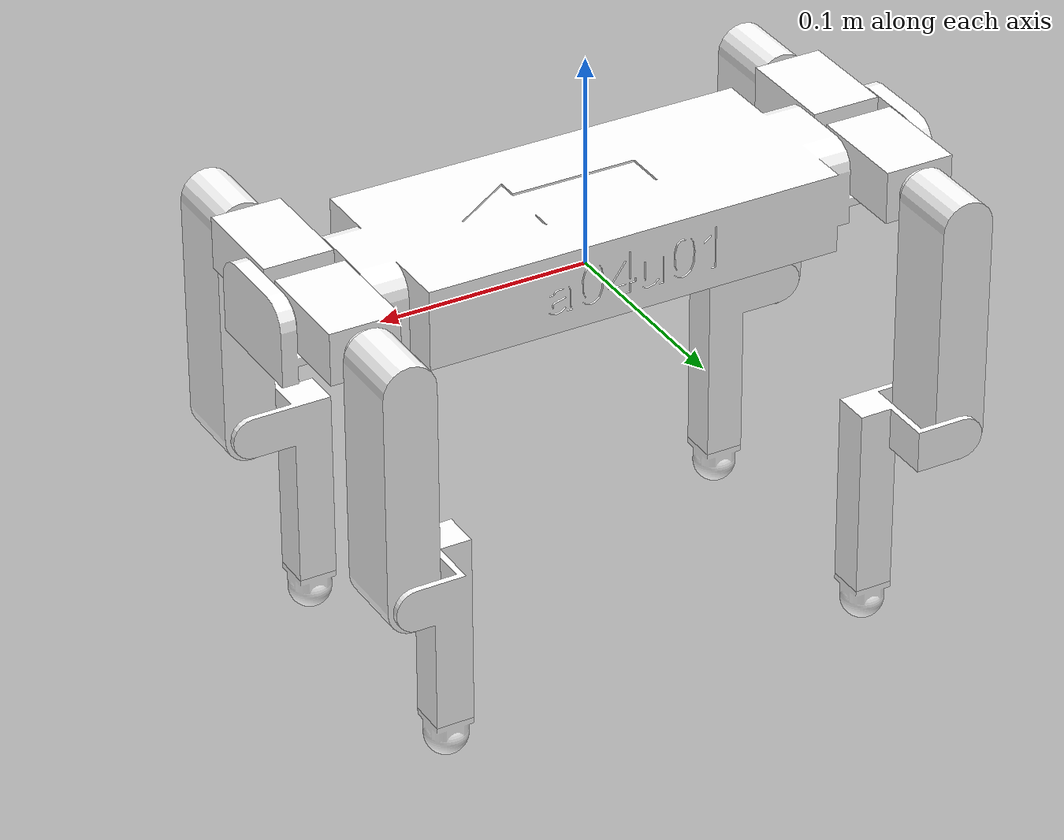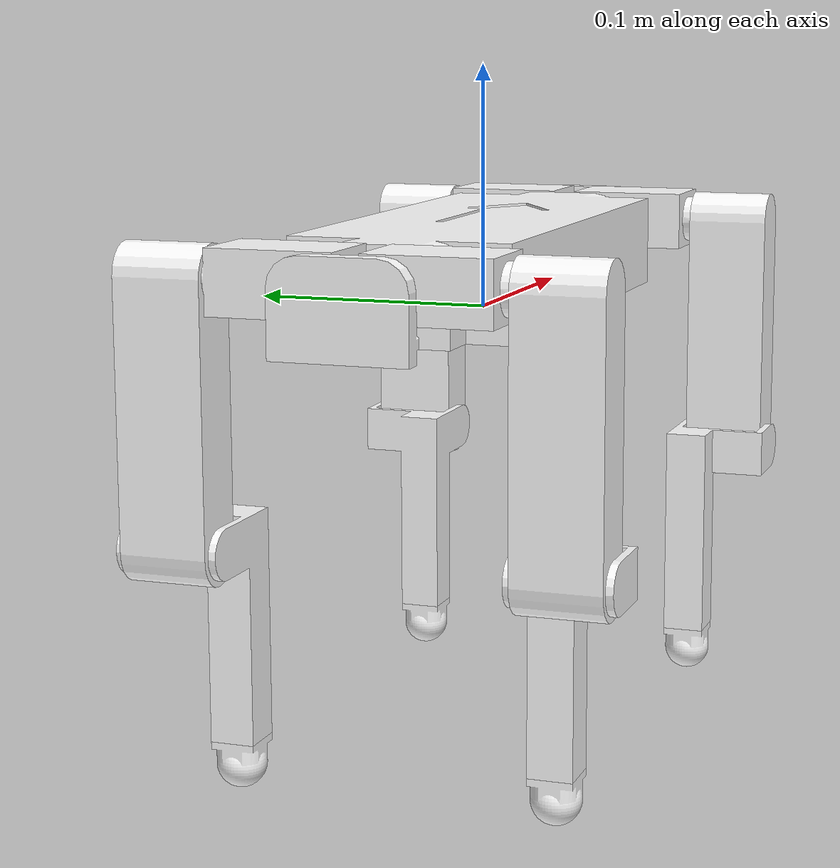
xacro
<robot name="dog12a04u03_description">

  <link name="base">
    <inertial>
      <origin xyz="-3.1736E-05 -2.9783E-05 0.018563" rpy="0 0 0" />
      <mass value="0.81565" />
      <inertia ixx="0.00059343" ixy="6.3209E-08" ixz="4.5229E-07" iyy="0.0043539" iyz="-2.8021E-09" izz="0.0047495" />
    </inertial>
    <visual>
      <origin xyz="0 0 0" rpy="0 0 0" />
      <geometry>
        <mesh filename="package://dog12a04u03_description/meshes/visual/base.STL" />
      </geometry>
      <material name="">
        <color rgba="1 1 1 1" />
      </material>
    </visual>
    <collision>
      <origin xyz="0 0 0" rpy="0 0 0" />
      <geometry>
        <mesh filename="package://dog12a04u03_description/meshes/collision/base.STL" />
      </geometry>
    </collision>
  </link>
  <link name="LF_HIP">
    <inertial>
      <origin xyz="-0.0175 0.015568 -1.7347E-18" rpy="0 0 0" />
      <mass value="0.043998" />
      <inertia ixx="1.2087E-05" ixy="-1.786E-20" ixz="-4.1325E-24" iyy="6.2751E-06" iyz="-7.9099E-23" izz="1.3883E-05" />
    </inertial>
    <visual>
      <origin xyz="0 0 0" rpy="0 0 0" />
      <geometry>
        <mesh filename="package://dog12a04u03_description/meshes/visual/LF_HIP.STL" />
      </geometry>
      <material name="">
        <color rgba="1 1 1 1" />
      </material>
    </visual>
    <collision>
      <origin xyz="0 0 0" rpy="0 0 0" />
      <geometry>
        <mesh filename="package://dog12a04u03_description/meshes/collision/LF_HIP.STL" />
      </geometry>
    </collision>
  </link>
  <joint name="LF_HAA" type="revolute">
    <origin xyz="0.1525 0.015 0.026" rpy="0 0 0" />
    <parent link="base" />
    <child link="LF_HIP" />
    <axis xyz="1 0 0" />
    <limit lower="-1.57" upper="1.57" effort="0" velocity="0" />
  </joint>
  <link name="LF_THIGH">
    <inertial>
      <origin xyz="0 -0.0175 -0.0525" rpy="0 0 0" />
      <mass value="0.11124" />
      <inertia ixx="0.0001562" ixy="4.903E-22" ixz="8.4372E-22" iyy="0.00015041" iyz="9.2995E-21" izz="1.6921E-05" />
    </inertial>
    <visual>
      <origin xyz="0 0 0" rpy="0 0 0" />
      <geometry>
        <mesh filename="package://dog12a04u03_description/meshes/visual/LF_THIGH.STL" />
      </geometry>
      <material name="">
        <color rgba="1 1 1 1" />
      </material>
    </visual>
    <collision>
      <origin xyz="0 0 0" rpy="0 0 0" />
      <geometry>
        <mesh filename="package://dog12a04u03_description/meshes/collision/LF_THIGH.STL" />
      </geometry>
    </collision>
  </link>
  <joint name="LF_HFE" type="revolute">
    <origin xyz="-0.0175 0.079 0" rpy="0 0 0" />
    <parent link="LF_HIP" />
    <child link="LF_THIGH" />
    <axis xyz="0 -1 0" />
    <limit lower="-1.57" upper="1.57" effort="0" velocity="0" />
  </joint>
  <link name="LF_SHANK">
    <inertial>
      <origin xyz="-0.026472 -0.030068 -0.031077" rpy="0 0 0" />
      <mass value="0.035221" />
      <inertia ixx="3.0014E-05" ixy="-9.4679E-07" ixz="-2.7667E-06" iyy="2.9697E-05" iyz="-2.1152E-06" izz="5.7378E-06" />
    </inertial>
    <visual>
      <origin xyz="0 0 0" rpy="0 0 0" />
      <geometry>
        <mesh filename="package://dog12a04u03_description/meshes/visual/LF_SHANK.STL" />
      </geometry>
      <material name="">
        <color rgba="1 1 1 1" />
      </material>
    </visual>
    <collision>
      <origin xyz="0 0 0" rpy="0 0 0" />
      <geometry>
        <mesh filename="package://dog12a04u03_description/meshes/collision/LF_SHANK.STL" />
      </geometry>
    </collision>
  </link>
  <joint name="LF_KFE" type="revolute">
    <origin xyz="0 0.003 -0.105" rpy="0 0 0" />
    <parent link="LF_THIGH" />
    <child link="LF_SHANK" />
    <axis xyz="0 -1 0" />
    <limit lower="-1.57" upper="1.57" effort="0" velocity="0" />
  </joint>
  <link name="LF_FOOT">
    <inertial>
      <origin xyz="0 0 -0.0085266" rpy="0 0 0" />
      <mass value="0.0052561" />
      <inertia ixx="2.5787E-07" ixy="1.5501E-22" ixz="1.9666E-22" iyy="2.5787E-07" iyz="-2.6506E-23" izz="2.4038E-07" />
    </inertial>
    <visual>
      <origin xyz="0 0 0" rpy="0 0 0" />
      <geometry>
        <mesh filename="package://dog12a04u03_description/meshes/visual/LF_FOOT.STL" />
      </geometry>
      <material name="">
        <color rgba="1 1 1 1" />
      </material>
    </visual>
    <collision>
      <origin xyz="0 0 0" rpy="0 0 0" />
      <geometry>
        <mesh filename="package://dog12a04u03_description/meshes/collision/LF_FOOT.STL" />
      </geometry>
    </collision>
  </link>
  <joint name="LF_FOOT_fixed" type="fixed">
    <origin xyz="-0.029 -0.032 -0.082" rpy="0 0 0" />
    <parent link="LF_SHANK" />
    <child link="LF_FOOT" />
    <axis xyz="0 0 0" />
    <limit lower="0" upper="0" effort="0" velocity="0" />
  </joint>
  <link name="RF_HIP">
    <inertial>
      <origin xyz="-0.0175 -0.015568 -3.4694E-18" rpy="0 0 0" />
      <mass value="0.043998" />
      <inertia ixx="1.2087E-05" ixy="4.9519E-21" ixz="-2.9013E-22" iyy="6.2751E-06" iyz="9.6455E-22" izz="1.3883E-05" />
    </inertial>
    <visual>
      <origin xyz="0 0 0" rpy="0 0 0" />
      <geometry>
        <mesh filename="package://dog12a04u03_description/meshes/visual/RF_HIP.STL" />
      </geometry>
      <material name="">
        <color rgba="1 1 1 1" />
      </material>
    </visual>
    <collision>
      <origin xyz="0 0 0" rpy="0 0 0" />
      <geometry>
        <mesh filename="package://dog12a04u03_description/meshes/collision/RF_HIP.STL" />
      </geometry>
    </collision>
  </link>
  <joint name="RF_HAA" type="revolute">
    <origin xyz="0.1525 -0.015 0.026" rpy="0 0 0" />
    <parent link="base" />
    <child link="RF_HIP" />
    <axis xyz="-1 0 0" />
    <limit lower="-1.57" upper="1.57" effort="0" velocity="0" />
  </joint>
  <link name="RF_THIGH">
    <inertial>
      <origin xyz="0 0.0175 -0.0525" rpy="0 0 0" />
      <mass value="0.11124" />
      <inertia ixx="0.0001562" ixy="9.7027E-21" ixz="-1.6874E-21" iyy="0.00015041" iyz="-2.13E-21" izz="1.6921E-05" />
    </inertial>
    <visual>
      <origin xyz="0 0 0" rpy="0 0 0" />
      <geometry>
        <mesh filename="package://dog12a04u03_description/meshes/visual/RF_THIGH.STL" />
      </geometry>
      <material name="">
        <color rgba="1 1 1 1" />
      </material>
    </visual>
    <collision>
      <origin xyz="0 0 0" rpy="0 0 0" />
      <geometry>
        <mesh filename="package://dog12a04u03_description/meshes/collision/RF_THIGH.STL" />
      </geometry>
    </collision>
  </link>
  <joint name="RF_HFE" type="revolute">
    <origin xyz="-0.0175 -0.079 0" rpy="0 0 0" />
    <parent link="RF_HIP" />
    <child link="RF_THIGH" />
    <axis xyz="0 -1 0" />
    <limit lower="-1.57" upper="1.57" effort="0" velocity="0" />
  </joint>
  <link name="RF_SHANK">
    <inertial>
      <origin xyz="-0.026472 0.030068 -0.031077" rpy="0 0 0" />
      <mass value="0.035221" />
      <inertia ixx="3.0014E-05" ixy="9.4679E-07" ixz="-2.7667E-06" iyy="2.9697E-05" iyz="2.1152E-06" izz="5.7378E-06" />
    </inertial>
    <visual>
      <origin xyz="0 0 0" rpy="0 0 0" />
      <geometry>
        <mesh filename="package://dog12a04u03_description/meshes/visual/RF_SHANK.STL" />
      </geometry>
      <material name="">
        <color rgba="1 1 1 1" />
      </material>
    </visual>
    <collision>
      <origin xyz="0 0 0" rpy="0 0 0" />
      <geometry>
        <mesh filename="package://dog12a04u03_description/meshes/collision/RF_SHANK.STL" />
      </geometry>
    </collision>
  </link>
  <joint name="RF_KFE" type="revolute">
    <origin xyz="0 -0.003 -0.105" rpy="0 0 0" />
    <parent link="RF_THIGH" />
    <child link="RF_SHANK" />
    <axis xyz="0 -1 0" />
    <limit lower="-1.57" upper="1.57" effort="0" velocity="0" />
  </joint>
  <link name="RF_FOOT">
    <inertial>
      <origin xyz="0 0 -0.0085266" rpy="0 0 0" />
      <mass value="0.0052561" />
      <inertia ixx="2.5787E-07" ixy="1.4349E-22" ixz="6.3879E-23" iyy="2.5787E-07" iyz="-4.5408E-23" izz="2.4038E-07" />
    </inertial>
    <visual>
      <origin xyz="0 0 0" rpy="0 0 0" />
      <geometry>
        <mesh filename="package://dog12a04u03_description/meshes/visual/RF_FOOT.STL" />
      </geometry>
      <material name="">
        <color rgba="1 1 1 1" />
      </material>
    </visual>
    <collision>
      <origin xyz="0 0 0" rpy="0 0 0" />
      <geometry>
        <mesh filename="package://dog12a04u03_description/meshes/collision/RF_FOOT.STL" />
      </geometry>
    </collision>
  </link>
  <joint name="RF_FOOT_fixed" type="fixed">
    <origin xyz="-0.029 0.032 -0.082" rpy="0 0 0" />
    <parent link="RF_SHANK" />
    <child link="RF_FOOT" />
    <axis xyz="0 0 0" />
    <limit lower="0" upper="0" effort="0" velocity="0" />
  </joint>
  <link name="LH_HIP">
    <inertial>
      <origin xyz="0.0175 0.015568 -1.7347E-18" rpy="0 0 0" />
      <mass value="0.043998" />
      <inertia ixx="1.2087E-05" ixy="1.119E-21" ixz="-1.5187E-23" iyy="6.2751E-06" iyz="-8.9553E-23" izz="1.3883E-05" />
    </inertial>
    <visual>
      <origin xyz="0 0 0" rpy="0 0 0" />
      <geometry>
        <mesh filename="package://dog12a04u03_description/meshes/visual/LH_HIP.STL" />
      </geometry>
      <material name="">
        <color rgba="1 1 1 1" />
      </material>
    </visual>
    <collision>
      <origin xyz="0 0 0" rpy="0 0 0" />
      <geometry>
        <mesh filename="package://dog12a04u03_description/meshes/collision/LH_HIP.STL" />
      </geometry>
    </collision>
  </link>
  <joint name="LH_HAA" type="revolute">
    <origin xyz="-0.1525 0.015 0.026" rpy="0 0 0" />
    <parent link="base" />
    <child link="LH_HIP" />
    <axis xyz="1 0 0" />
    <limit lower="-1.57" upper="1.57" effort="0" velocity="0" />
  </joint>
  <link name="LH_THIGH">
    <inertial>
      <origin xyz="-6.9389E-18 -0.0175 -0.0525" rpy="0 0 0" />
      <mass value="0.11124" />
      <inertia ixx="0.0001562" ixy="-5.6606E-21" ixz="3.7124E-20" iyy="0.00015041" iyz="-2.357E-20" izz="1.6921E-05" />
    </inertial>
    <visual>
      <origin xyz="0 0 0" rpy="0 0 0" />
      <geometry>
        <mesh filename="package://dog12a04u03_description/meshes/visual/LH_THIGH.STL" />
      </geometry>
      <material name="">
        <color rgba="1 1 1 1" />
      </material>
    </visual>
    <collision>
      <origin xyz="0 0 0" rpy="0 0 0" />
      <geometry>
        <mesh filename="package://dog12a04u03_description/meshes/collision/LH_THIGH.STL" />
      </geometry>
    </collision>
  </link>
  <joint name="LH_HFE" type="revolute">
    <origin xyz="0.0175 0.079 0" rpy="0 0 0" />
    <parent link="LH_HIP" />
    <child link="LH_THIGH" />
    <axis xyz="0 -1 0" />
    <limit lower="-1.57" upper="1.57" effort="0" velocity="0" />
  </joint>
  <link name="LH_SHANK">
    <inertial>
      <origin xyz="0.026472 0.010932 -0.031077" rpy="0 0 0" />
      <mass value="0.035221" />
      <inertia ixx="3.0014E-05" ixy="9.4679E-07" ixz="2.7667E-06" iyy="2.9697E-05" iyz="-2.1152E-06" izz="5.7378E-06" />
    </inertial>
    <visual>
      <origin xyz="0 0 0" rpy="0 0 0" />
      <geometry>
        <mesh filename="package://dog12a04u03_description/meshes/visual/LH_SHANK.STL" />
      </geometry>
      <material name="">
        <color rgba="1 1 1 1" />
      </material>
    </visual>
    <collision>
      <origin xyz="0 0 0" rpy="0 0 0" />
      <geometry>
        <mesh filename="package://dog12a04u03_description/meshes/collision/LH_SHANK.STL" />
      </geometry>
    </collision>
  </link>
  <joint name="LH_KFE" type="revolute">
    <origin xyz="0 -0.038 -0.105" rpy="0 0 0" />
    <parent link="LH_THIGH" />
    <child link="LH_SHANK" />
    <axis xyz="0 1 0" />
    <limit lower="-1.57" upper="1.57" effort="0" velocity="0" />
  </joint>
  <link name="LH_FOOT">
    <inertial>
      <origin xyz="6.9389E-18 -1.3878E-17 -0.0085266" rpy="0 0 0" />
      <mass value="0.0052561" />
      <inertia ixx="2.5787E-07" ixy="-7.8288E-23" ixz="1.1979E-22" iyy="2.5787E-07" iyz="6.7417E-24" izz="2.4038E-07" />
    </inertial>
    <visual>
      <origin xyz="0 0 0" rpy="0 0 0" />
      <geometry>
        <mesh filename="package://dog12a04u03_description/meshes/visual/LH_FOOT.STL" />
      </geometry>
      <material name="">
        <color rgba="1 1 1 1" />
      </material>
    </visual>
    <collision>
      <origin xyz="0 0 0" rpy="0 0 0" />
      <geometry>
        <mesh filename="package://dog12a04u03_description/meshes/collision/LH_FOOT.STL" />
      </geometry>
    </collision>
  </link>
  <joint name="LH_FOOT_fixed" type="fixed">
    <origin xyz="0.029 0.009 -0.082" rpy="0 0 0" />
    <parent link="LH_SHANK" />
    <child link="LH_FOOT" />
    <axis xyz="0 0 0" />
    <limit lower="0" upper="0" effort="0" velocity="0" />
  </joint>
  <link name="RH_HIP">
    <inertial>
      <origin xyz="0.0175 -0.015568 1.7347E-18" rpy="0 0 0" />
      <mass value="0.043998" />
      <inertia ixx="1.2087E-05" ixy="2.2832E-20" ixz="-8.6558E-23" iyy="6.2751E-06" iyz="1.9815E-22" izz="1.3883E-05" />
    </inertial>
    <visual>
      <origin xyz="0 0 0" rpy="0 0 0" />
      <geometry>
        <mesh filename="package://dog12a04u03_description/meshes/visual/RH_HIP.STL" />
      </geometry>
      <material name="">
        <color rgba="1 1 1 1" />
      </material>
    </visual>
    <collision>
      <origin xyz="0 0 0" rpy="0 0 0" />
      <geometry>
        <mesh filename="package://dog12a04u03_description/meshes/collision/RH_HIP.STL" />
      </geometry>
    </collision>
  </link>
  <joint name="RH_HAA" type="revolute">
    <origin xyz="-0.1525 -0.015 0.026" rpy="0 0 0" />
    <parent link="base" />
    <child link="RH_HIP" />
    <axis xyz="-1 0 0" />
    <limit lower="-1.57" upper="1.57" effort="0" velocity="0" />
  </joint>
  <link name="RH_THIGH">
    <inertial>
      <origin xyz="-8.6736E-18 0.0175 -0.0525" rpy="0 0 0" />
      <mass value="0.11124" />
      <inertia ixx="0.0001562" ixy="-1.5383E-22" ixz="-4.2186E-22" iyy="0.00015041" iyz="1.7065E-20" izz="1.6921E-05" />
    </inertial>
    <visual>
      <origin xyz="0 0 0" rpy="0 0 0" />
      <geometry>
        <mesh filename="package://dog12a04u03_description/meshes/visual/RH_THIGH.STL" />
      </geometry>
      <material name="">
        <color rgba="1 1 1 1" />
      </material>
    </visual>
    <collision>
      <origin xyz="0 0 0" rpy="0 0 0" />
      <geometry>
        <mesh filename="package://dog12a04u03_description/meshes/collision/RH_THIGH.STL" />
      </geometry>
    </collision>
  </link>
  <joint name="RH_HFE" type="revolute">
    <origin xyz="0.0175 -0.079 0" rpy="0 0 0" />
    <parent link="RH_HIP" />
    <child link="RH_THIGH" />
    <axis xyz="0 -1 0" />
    <limit lower="-1.57" upper="1.57" effort="0" velocity="0" />
  </joint>
  <link name="RH_SHANK">
    <inertial>
      <origin xyz="0.026472 -0.010932 -0.031077" rpy="0 0 0" />
      <mass value="0.035221" />
      <inertia ixx="3.0014E-05" ixy="-9.4679E-07" ixz="2.7667E-06" iyy="2.9697E-05" iyz="2.1152E-06" izz="5.7378E-06" />
    </inertial>
    <visual>
      <origin xyz="0 0 0" rpy="0 0 0" />
      <geometry>
        <mesh filename="package://dog12a04u03_description/meshes/visual/RH_SHANK.STL" />
      </geometry>
      <material name="">
        <color rgba="1 1 1 1" />
      </material>
    </visual>
    <collision>
      <origin xyz="0 0 0" rpy="0 0 0" />
      <geometry>
        <mesh filename="package://dog12a04u03_description/meshes/collision/RH_SHANK.STL" />
      </geometry>
    </collision>
  </link>
  <joint name="RH_KFE" type="revolute">
    <origin xyz="0 0.038 -0.105" rpy="0 0 0" />
    <parent link="RH_THIGH" />
    <child link="RH_SHANK" />
    <axis xyz="0 1 0" />
    <limit lower="-1.57" upper="1.57" effort="0" velocity="0" />
  </joint>
  <link name="RH_FOOT">
    <inertial>
      <origin xyz="-2.7756E-17 0 -0.0085266" rpy="0 0 0" />
      <mass value="0.0052561" />
      <inertia ixx="2.5787E-07" ixy="-1.1991E-22" ixz="1.7935E-22" iyy="2.5787E-07" iyz="1.5738E-22" izz="2.4038E-07" />
    </inertial>
    <visual>
      <origin xyz="0 0 0" rpy="0 0 0" />
      <geometry>
        <mesh filename="package://dog12a04u03_description/meshes/visual/RH_FOOT.STL" />
      </geometry>
      <material name="">
        <color rgba="1 1 1 1" />
      </material>
    </visual>
    <collision>
      <origin xyz="0 0 0" rpy="0 0 0" />
      <geometry>
        <mesh filename="package://dog12a04u03_description/meshes/collision/RH_FOOT.STL" />
      </geometry>
    </collision>
  </link>
  <joint name="RH_FOOT_fixed" type="fixed">
    <origin xyz="0.029 -0.009 -0.082" rpy="0 0 0" />
    <parent link="RH_SHANK" />
    <child link="RH_FOOT" />
    <axis xyz="0 0 0" />
    <limit lower="0" upper="0" effort="0" velocity="0" />
  </joint>
</robot>
